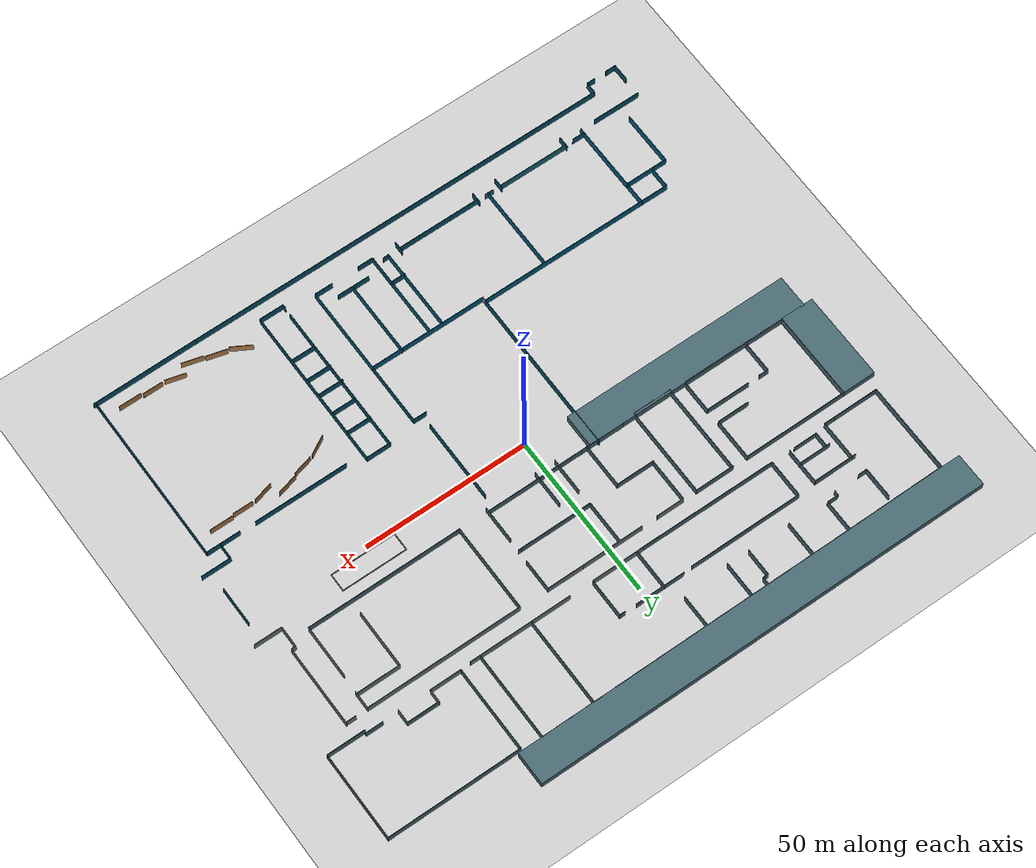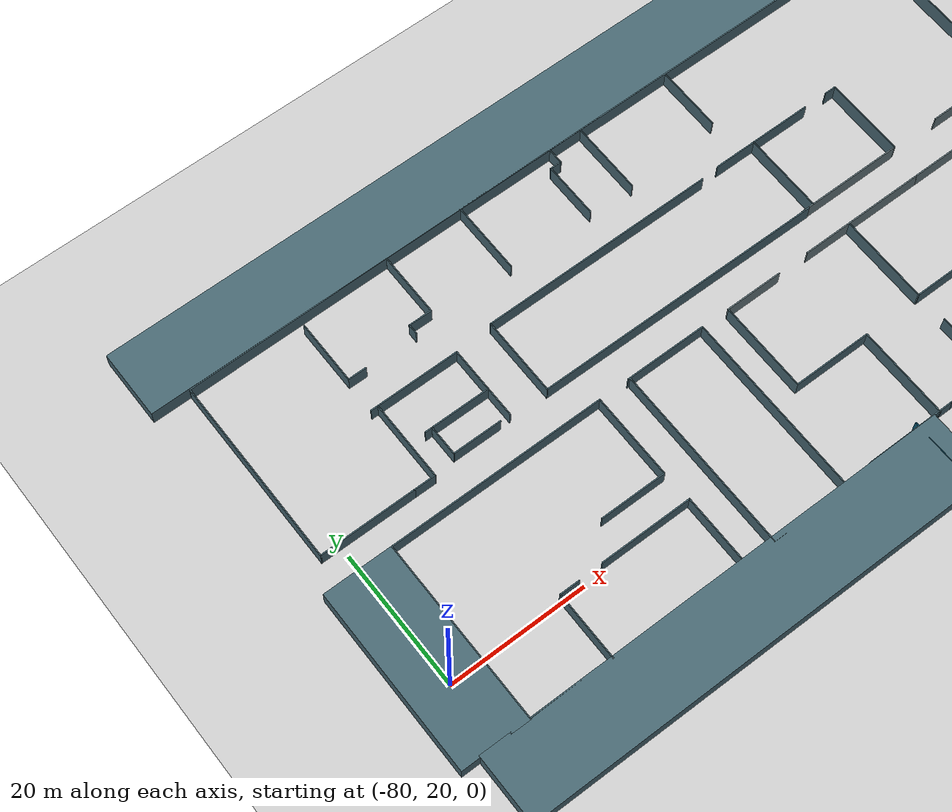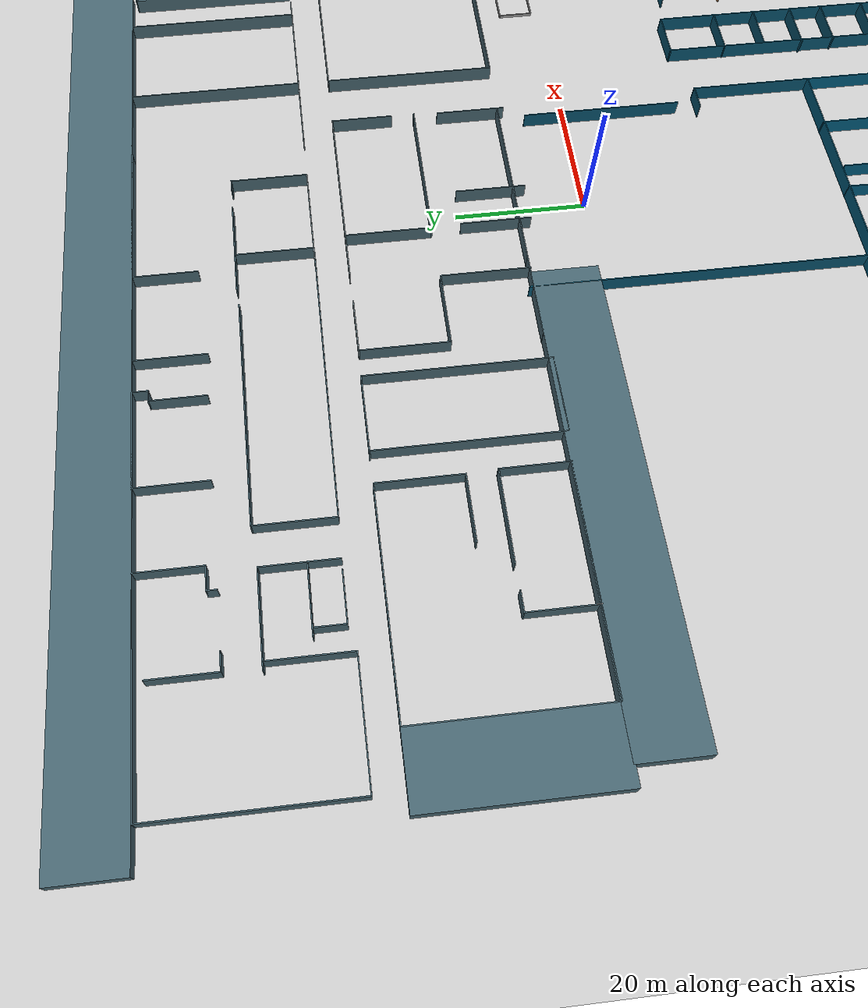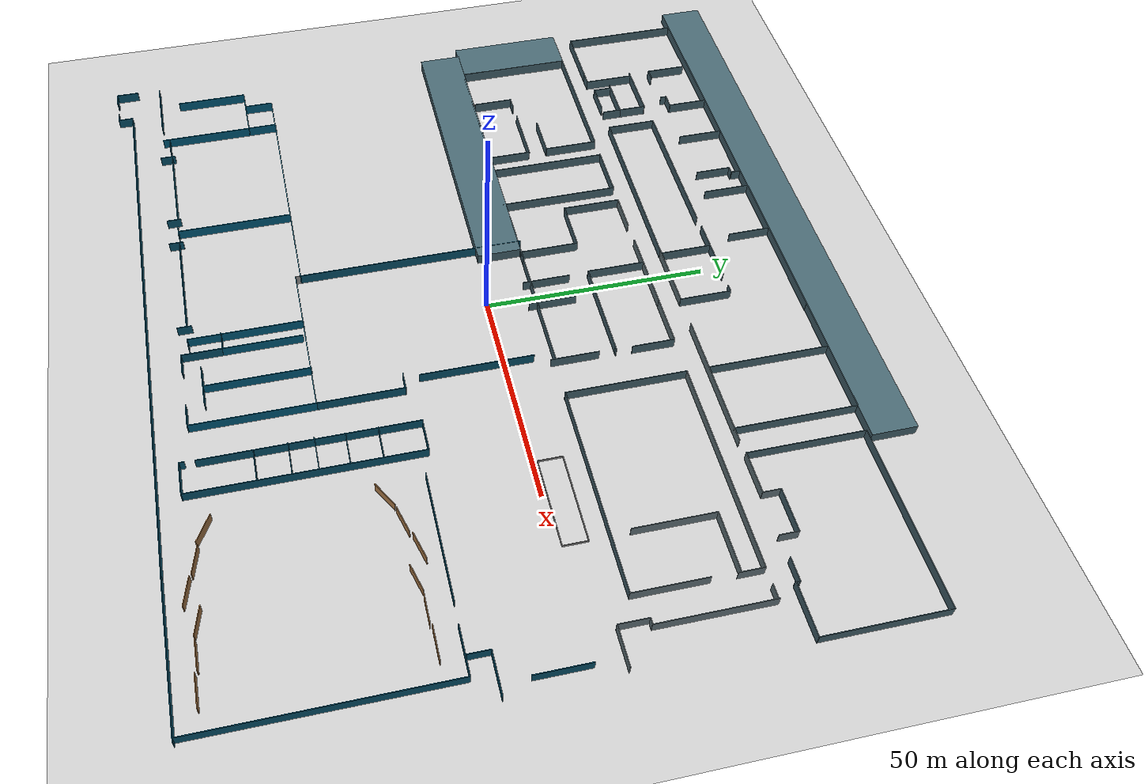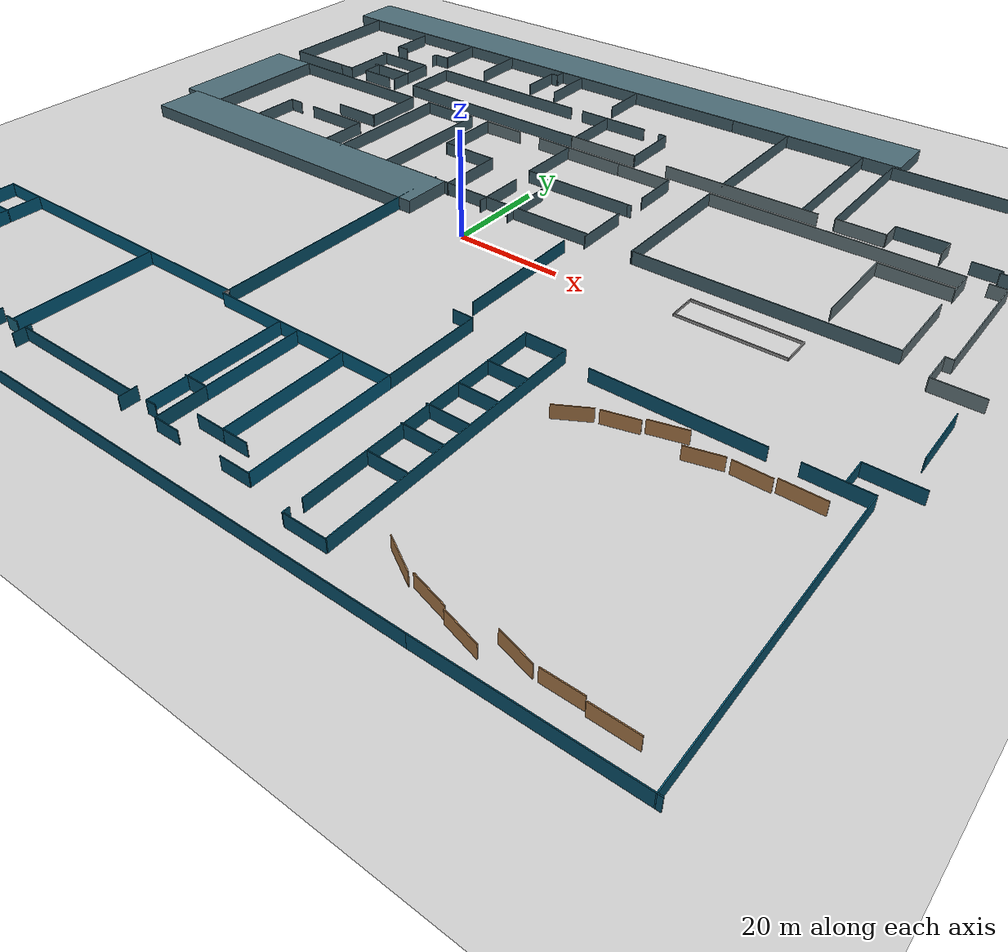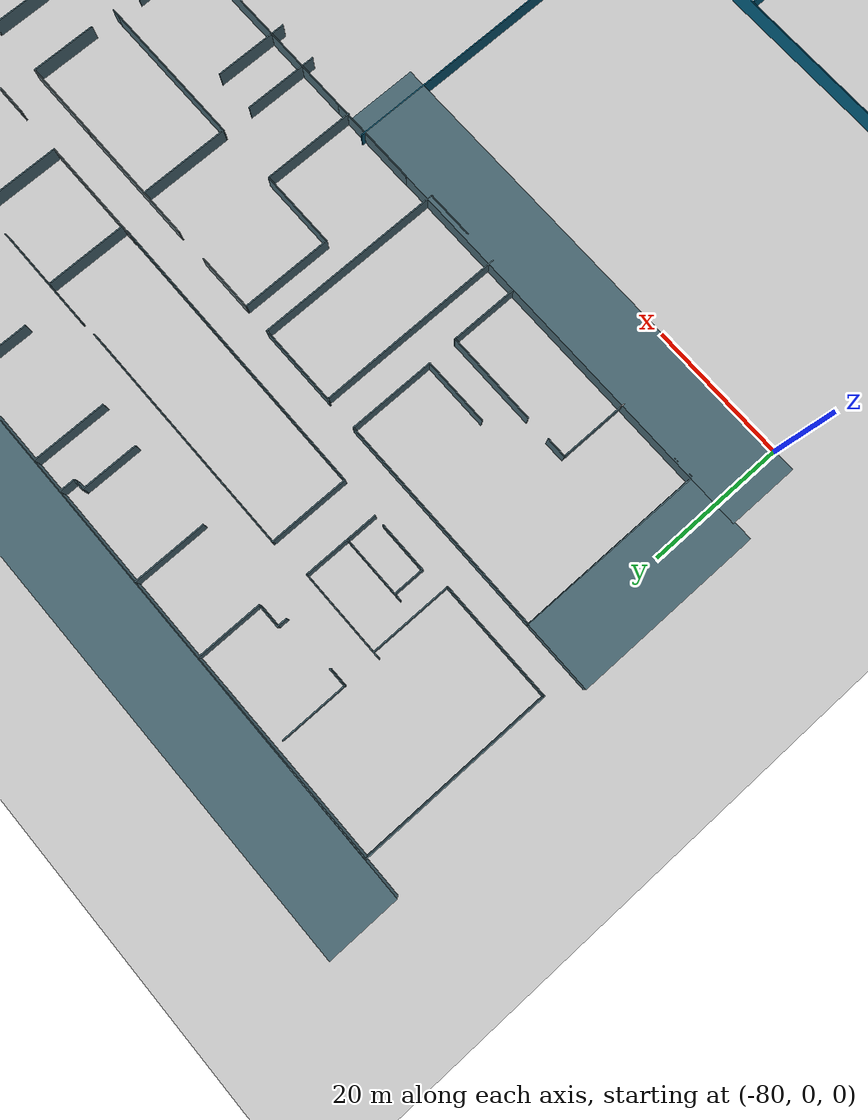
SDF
<?xml version="1.0" ?>

<sdf version="1.4">
  <world name="default">

    <include>
      <uri>model://ground_plane</uri>
    </include>

    <include>
      <uri>model://sun</uri>
    </include>

    <include>
      <uri>model://eceb_mp4</uri>
    </include>

  </world>
</sdf>
